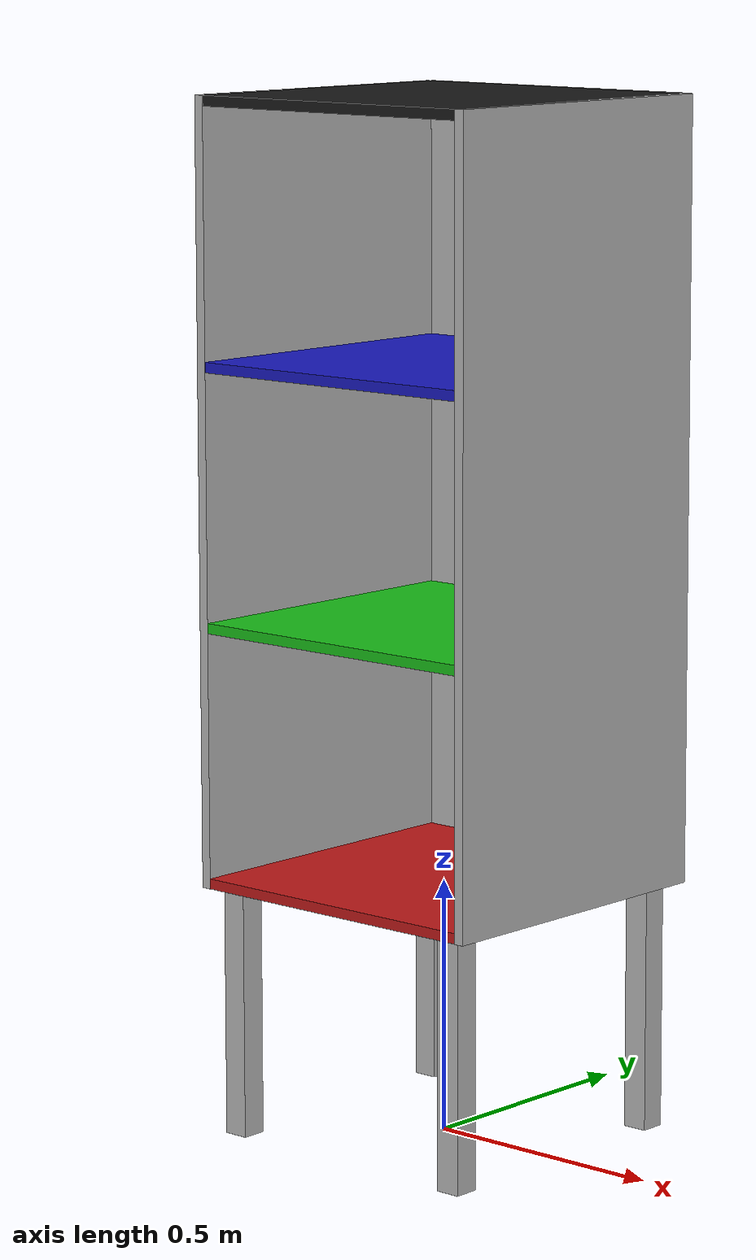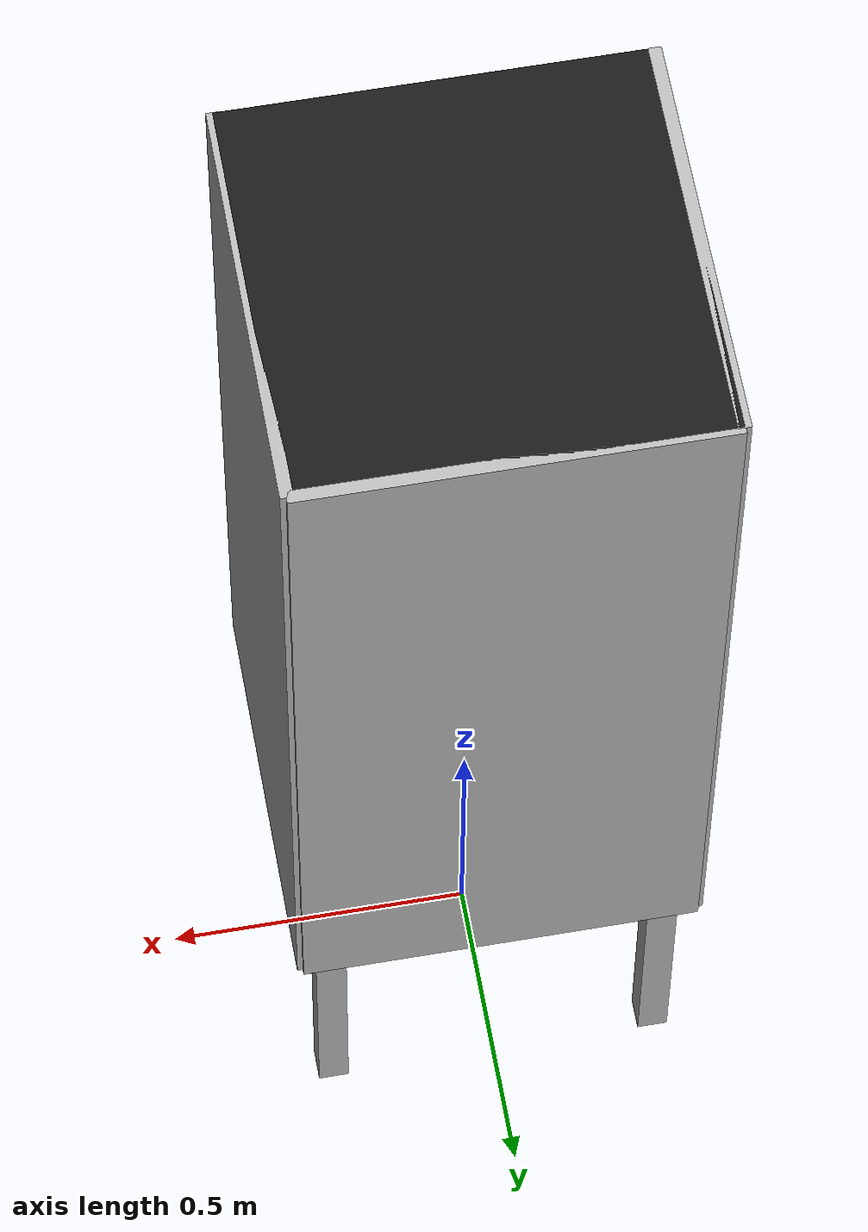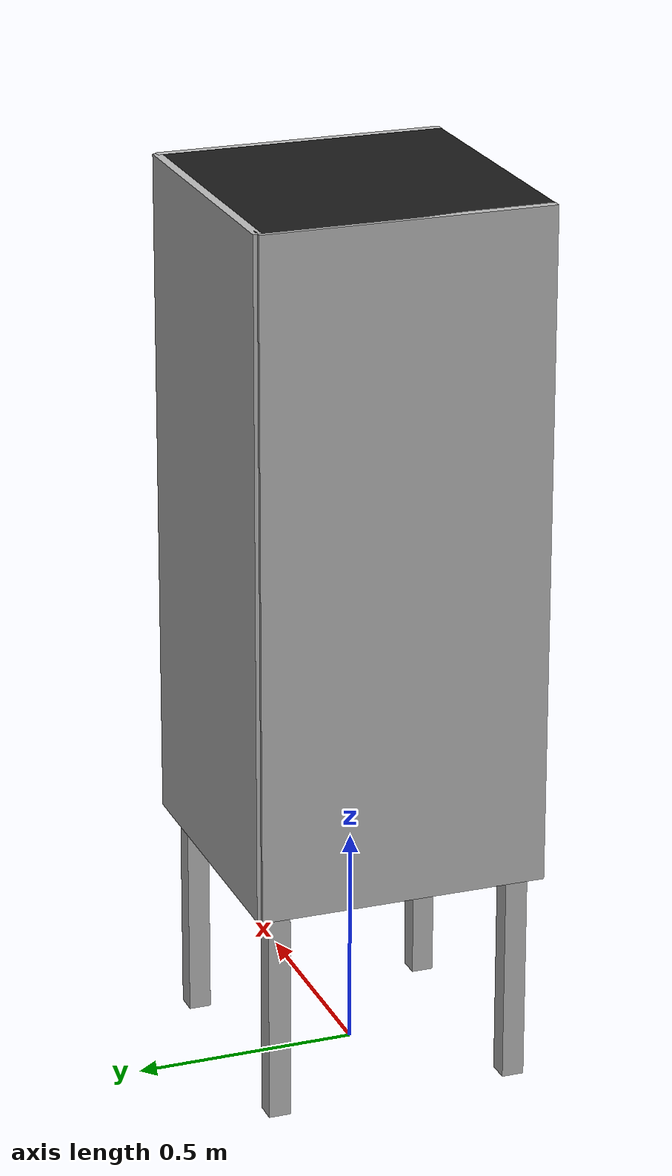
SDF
<?xml version='1.0'?>
<sdf version="1.4">
  <model name="warehouse_shelf">
    <static>true</static>
    <pose>0 0 0 0 0 0</pose>

    <link name="main_block">
      <pose>0 0 1.255 0 0 0</pose>
      <collision name="collision"><geometry><box><size>.65 .65 1.51</size></box></geometry></collision>
    </link>

    <link name="leg_1"><pose> .275  .275 .25 0 0 0</pose><collision name="collision"><geometry><box><size>.05 .05 .5</size></box></geometry></collision><visual name="visual"><geometry><box><size>.05 .05 .5</size></box></geometry></visual></link>
    <link name="leg_2"><pose>-.275  .275 .25 0 0 0</pose><collision name="collision"><geometry><box><size>.05 .05 .5</size></box></geometry></collision><visual name="visual"><geometry><box><size>.05 .05 .5</size></box></geometry></visual></link>
    <link name="leg_3"><pose>-.275 -.275 .25 0 0 0</pose><collision name="collision"><geometry><box><size>.05 .05 .5</size></box></geometry></collision><visual name="visual"><geometry><box><size>.05 .05 .5</size></box></geometry></visual></link>
    <link name="leg_4"><pose> .275 -.275 .25 0 0 0</pose><collision name="collision"><geometry><box><size>.05 .05 .5</size></box></geometry></collision><visual name="visual"><geometry><box><size>.05 .05 .5</size></box></geometry></visual></link>

    <link name="shelf_0">  <pose>0 0 0.5 0 0 0</pose><visual name="visual"><geometry><box><size>.648 .648 .02</size></box></geometry><material><ambient>0.75 0.10 0.10 1</ambient><diffuse>0.75 0.10 0.10 1</diffuse></material></visual></link>
    <link name="shelf_1">  <pose>0 0 1.0 0 0 0</pose><visual name="visual"><geometry><box><size>.648 .648 .02</size></box></geometry><material><ambient>0.10 0.75 0.10 1</ambient><diffuse>0.10 0.75 0.10 1</diffuse></material></visual></link>
    <link name="shelf_2">  <pose>0 0 1.5 0 0 0</pose><visual name="visual"><geometry><box><size>.648 .648 .02</size></box></geometry><material><ambient>0.10 0.10 0.75 1</ambient><diffuse>0.10 0.10 0.75 1</diffuse></material></visual></link>
    <link name="shelf_top"><pose>0 0 2.0 0 0 0</pose><visual name="visual"><geometry><box><size>.648 .648 .02</size></box></geometry><material><ambient>0.10 0.10 0.10 1</ambient><diffuse>0.10 0.10 0.10 1</diffuse></material></visual></link>

    <link name="side_left"> <pose> .324 .000 1.25 0 0 0</pose><visual name="visual"><geometry><box><size>.02 .65 1.52</size></box></geometry></visual></link>
    <link name="side_right"><pose>-.324 .000 1.25 0 0 0</pose><visual name="visual"><geometry><box><size>.02 .65 1.52</size></box></geometry></visual></link>
    <link name="side_back"> <pose> .000 .324 1.25 0 0 0</pose><visual name="visual"><geometry><box><size>.65 .02 1.52</size></box></geometry></visual></link>

  </model>
</sdf>
